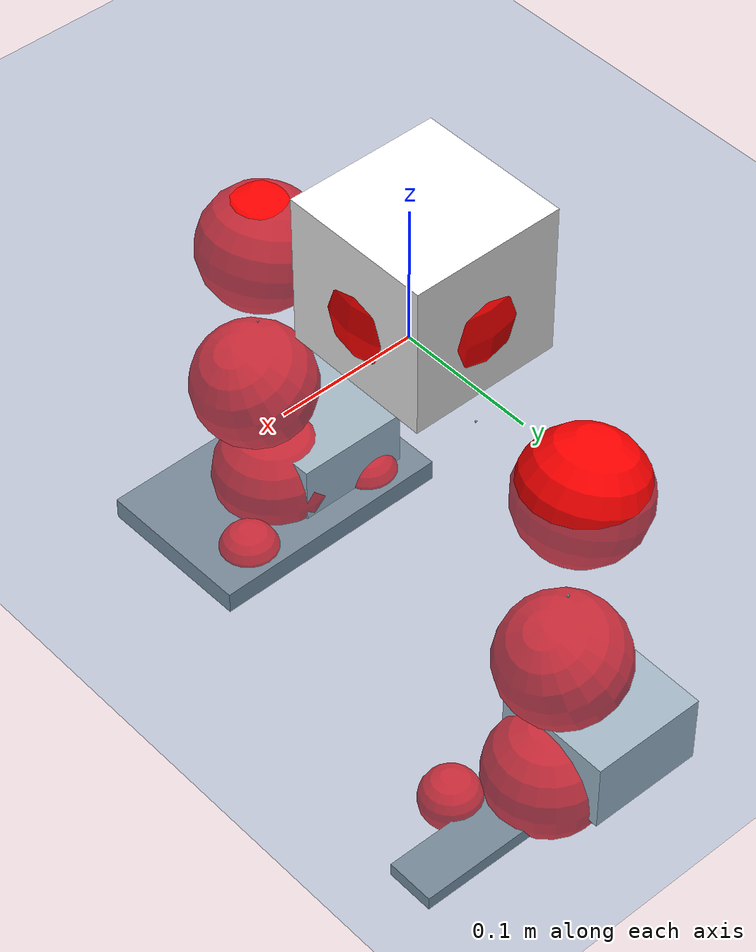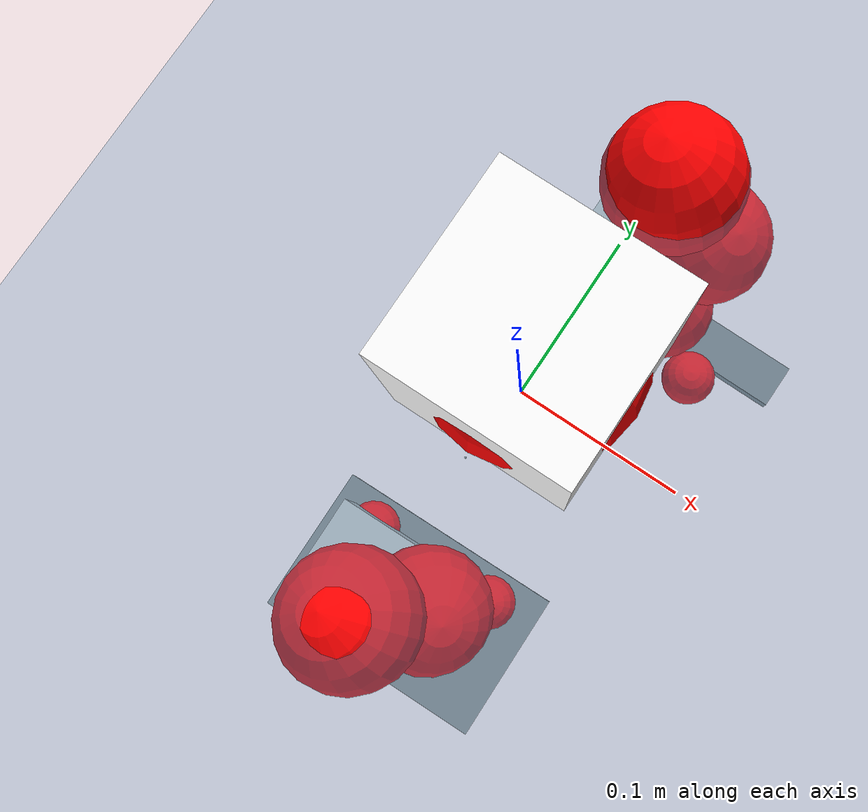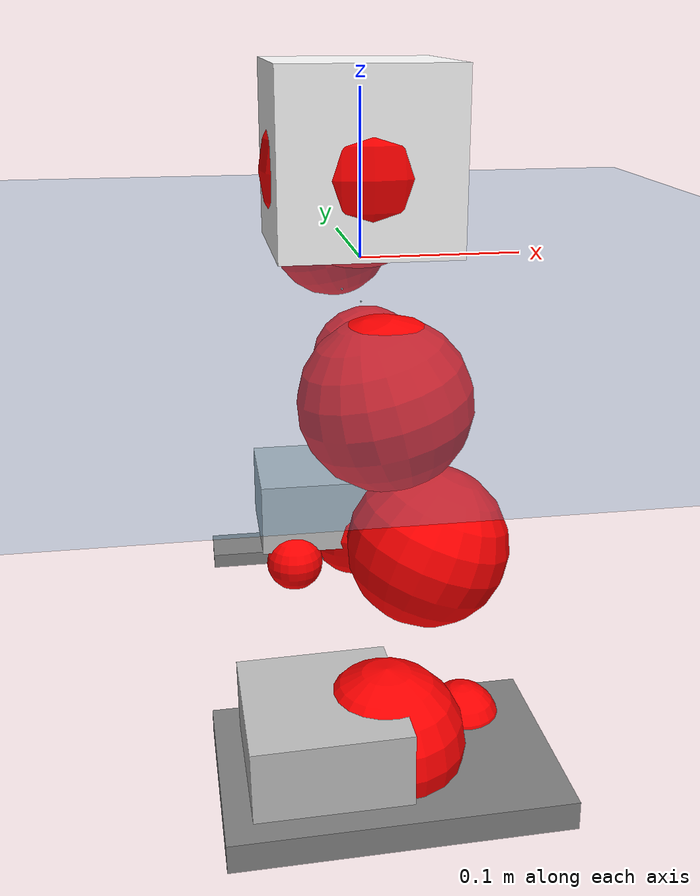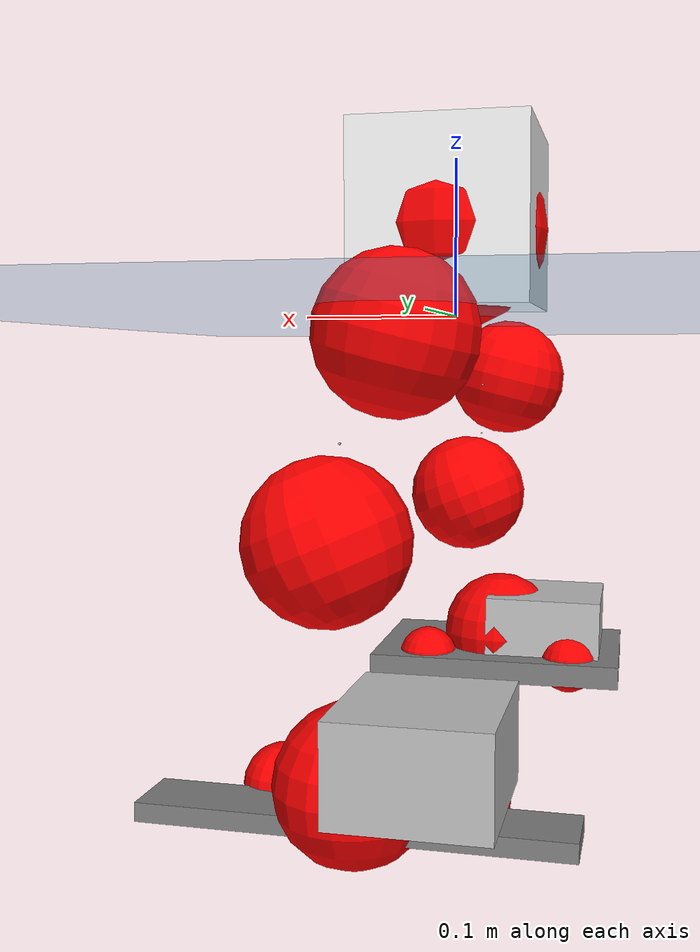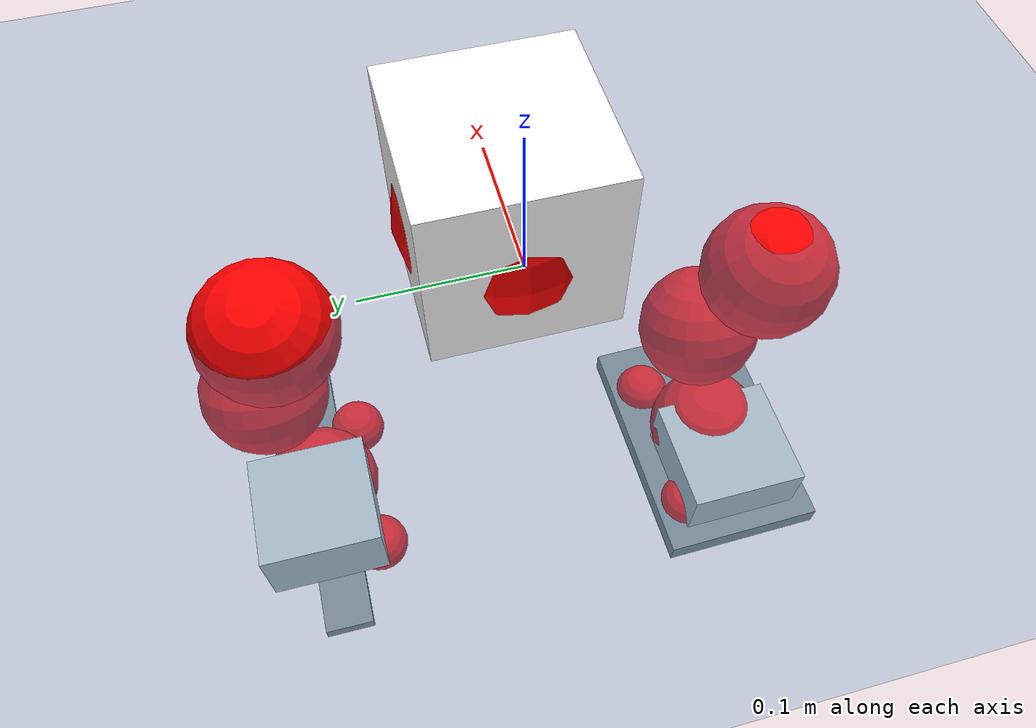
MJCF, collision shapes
<mujoco model="pi_12dof_release_v1">
  <compiler angle="radian" assetdir="assets" balanceinertia="true" inertiafromgeom="false"/>

  <option timestep="0.005" density="1.2" viscosity="2e-05"/>

  <size nkey="1"/>

  <visual>
    <quality shadowsize="8192"/>
    <map shadowclip="0.5"/>
  </visual>

  <default>
    <default class="/">
      <joint armature="0.01" damping="0.01" frictionloss="0.01"/>
      <geom contype="0" conaffinity="0" group="1" solref="-1000 -80"/>
      <site size="0.01 0.005 0.005" group="5"/>
      <general forcelimited="true" biastype="affine" gainprm="20" biasprm="0 -20 -0.5"/>
      <default class="foot">
        <geom size="0.0845 0.036 0.005" type="box" condim="6" group="4" priority="1" friction="0.9 0.2 0.2" solimp="0.015 1 0.005"/>
      </default>
      <default class="reward_collision_sphere">
        <geom group="5" rgba="1 0 0 1"/>
      </default>
    </default>
  </default>

  <asset>
    <texture type="skybox" colorspace="auto" name="//unnamed_texture_0" builtin="gradient" rgb1="0.95 0.95 0.95" rgb2="0.95 0.95 0.95" width="100" height="600"/>
    <texture type="2d" colorspace="auto" name="texplane" builtin="checker" rgb1="0.345 0.575 0.748" rgb2="0.345 0.575 0.748" markrgb="1 1 1" width="512" height="512"/>
    <material name="MatPlane" class="/" texture="texplane" texuniform="true" texrepeat="2 2" specular="0.9"/>
    <mesh name="baselink_1" class="/" file="baselink_1.STL"/>
    <mesh name="r_hip_pitch_link" class="/" file="r_hip_pitch_link.STL"/>
    <mesh name="r_hip_roll_link" class="/" file="r_hip_roll_link.STL"/>
    <mesh name="r_thigh_link" class="/" file="r_thigh_link.STL"/>
    <mesh name="r_calf_link" class="/" file="r_calf_link.STL"/>
    <mesh name="r_ankle_pitch_link" class="/" file="r_ankle_pitch_link.STL"/>
    <mesh name="r_ankle_roll_link" class="/" file="r_ankle_roll_link.STL"/>
    <mesh name="l_hip_pitch_link" class="/" file="l_hip_pitch_link.STL"/>
    <mesh name="l_hip_roll_link" class="/" file="l_hip_roll_link.STL"/>
    <mesh name="l_thigh_link" class="/" file="l_thigh_link.STL"/>
    <mesh name="l_calf_link" class="/" file="l_calf_link.STL"/>
    <mesh name="l_ankle_pitch_link" class="/" file="l_ankle_pitch_link.STL"/>
    <mesh name="l_ankle_roll_link" class="/" file="l_ankle_roll_link.STL"/>
  </asset>

  <worldbody>
    <geom name="floor" class="/" size="100 100 0.125" type="plane" group="0" material="MatPlane"/>
    <light name="toplight_shadow" class="/" pos="0 0 5" dir="0.0990148 0.0990148 -0.990148" type="directional" ambient="0.04 0.04 0.04" diffuse="0.55 0.55 0.55" specular="0.12 0.12 0.12"/>
    <light name="toplight_fill" class="/" pos="0 0 5" dir="0.0990148 0.0990148 -0.990148" type="directional" castshadow="false" ambient="0.04 0.04 0.04" diffuse="0.3 0.3 0.3" specular="0.08 0.08 0.08"/>
    <body name="trunk" pos="0.000439719 0.0129031 -0.00321821" quat="1 0.000157661 0.000182005 8.54925e-05">
      <inertial pos="-0.00478929 0.0135584 0.0339016" quat="0.753188 0.0248658 -0.010281 0.657254" mass="2.88135" diaginertia="0.00361885 0.147189 0.00126616"/>
      <joint name="//unnamed_joint_0" type="free"/>
      <geom name="//unnamed_geom_1" class="/" type="mesh" density="0" rgba="1 1 1 1" mesh="baselink_1"/>
      <geom name="//unnamed_geom_2" class="/" size="0.0548394 0.0548394 0.0548394" pos="0 0 0.0631543" type="box" rgba="1 1 1 1"/>
      <geom name="//unnamed_geom_3" class="reward_collision_sphere" size="0.0603233" pos="0 0 0.05526"/>
      <site name="imu" class="/" pos="-0.0628291 -0.0508904 0.0644345" size="0.0109679"/>
      <camera name="track" class="/" pos="0 -3.39919 0" quat="0.707107 0.707107 0 0" mode="trackcom"/>
      <camera name="ego_camera" class="/" pos="0.0601005 0 0.142097" quat="-0.5 -0.5 0.5 0.5"/>
      <body name="r_hip_pitch_link" pos="-0.0113933 -0.056723 -0.0408896" quat="0.992487 0.00417407 -0.122192 -0.00456716">
        <inertial pos="0.00507881 -0.0946517 -0.00956869" quat="-0.00239837 0.704485 -0.0337746 0.70891" mass="0.577988" diaginertia="3.50304e-05 0.00151555 2.43141e-05"/>
        <joint name="r_hip_pitch_joint" class="/" pos="0 0 0" axis="-0.0388571 -0.999244 -0.00152111" stiffness="0.0105192" range="-1.75196 1.44898" armature="0.0101069" damping="0.016876" frictionloss="0.0142216"/>
        <geom name="//unnamed_geom_4" class="/" type="mesh" density="0" rgba="0.75294 0.75294 0.75294 1" mesh="r_hip_pitch_link"/>
        <geom name="//unnamed_geom_5" class="/" size="0.000548394 0.000548394 0.000548394" type="box" rgba="0.75294 0.75294 0.75294 1"/>
        <body name="r_hip_roll_link" pos="-0.000475561 -0.113749 0.00558904" quat="0.999982 0.00319199 -0.00401969 0.00308286">
          <inertial pos="-0.0134094 -0.0101965 -0.0525079" quat="0.673884 -0.029878 -0.109053 0.730134" mass="0.510998" diaginertia="0.000102636 0.00384162 4.14429e-05"/>
          <joint name="r_hip_roll_joint" class="/" pos="0 0 0" axis="-0.998423 0.0346131 -0.0441904" range="-0.0891905 0.224966" armature="0.0177515" damping="0.108887" frictionloss="0.0124508"/>
          <geom name="//unnamed_geom_6" class="/" type="mesh" density="0" rgba="0.75294 0.75294 0.75294 1" mesh="r_hip_roll_link"/>
          <geom name="//unnamed_geom_7" class="/" size="0.000548394 0.000548394 0.000548394" type="box" rgba="0.75294 0.75294 0.75294 1"/>
          <geom name="//unnamed_geom_8" class="reward_collision_sphere" size="0.0438715"/>
          <body name="r_thigh_link" pos="0.0067676 0.0153938 -0.0468506" quat="0.999988 0.00191021 -0.00258283 0.00365147">
            <inertial pos="-0.0111988 0.00238181 -0.0208483" quat="0.738238 0.674539 -0.000586278 0.00120879" mass="0.154895" diaginertia="4.75218e-05 0.00106804 2.12235e-05"/>
            <joint name="r_thigh_joint" class="/" pos="0 0 0" axis="0.00316127 -0.0012246 -0.999994" stiffness="0.0520475" range="-0.0646455 0.56744" armature="0.0154858" damping="0" frictionloss="0.0104223"/>
            <geom name="//unnamed_geom_9" class="/" type="mesh" density="0" rgba="0.75294 0.75294 0.75294 1" mesh="r_thigh_link"/>
            <geom name="//unnamed_geom_10" class="/" size="0.000548394 0.000548394 0.000548394" type="box" rgba="0.75294 0.75294 0.75294 1"/>
            <body name="r_calf_link" pos="-0.00251354 0.00448055 -0.0470547" quat="0.947648 -2.00919e-06 0.319316 -3.29258e-06">
              <inertial pos="0.00737225 -0.00754804 -0.0607799" quat="0.999936 -0.00488235 0.00932245 -0.00404018" mass="1.21849" diaginertia="0.00121361 0.0581725 4.29207e-05"/>
              <joint name="r_calf_joint" class="/" pos="0 0 0" axis="-0.0342827 -0.998713 0.0373809" stiffness="0.0465589" range="-1.99883 0.455348" armature="0.0142663" damping="0.00925534" frictionloss="0.00584573"/>
              <geom name="//unnamed_geom_11" class="/" type="mesh" density="0" rgba="0.75294 0.75294 0.75294 1" mesh="r_calf_link"/>
              <geom name="//unnamed_geom_12" class="/" size="0.000548394 0.000548394 0.000548394" type="box" rgba="0.75294 0.75294 0.75294 1"/>
              <geom name="//unnamed_geom_13" class="reward_collision_sphere" size="0.0438715"/>
              <body name="r_ankle_pitch_link" pos="-0.0153981 -0.0169326 -0.120766" quat="0.979249 -0.00168259 -0.202648 0.0014477">
                <inertial pos="0.0130369 0.0228905 0.00258943" quat="0.0461793 0.690006 0.0168118 0.722133" mass="0.16346" diaginertia="8.10512e-05 0.00259812 3.34329e-05"/>
                <joint name="r_ankle_pitch_joint" class="/" pos="0 0 0" axis="0.047561 -0.996887 0.0628897" range="-1.4809 0.189005" armature="0.00974575" damping="0" frictionloss="0.0151663"/>
                <geom name="//unnamed_geom_14" class="/" type="mesh" density="0" rgba="0.75294 0.75294 0.75294 1" mesh="r_ankle_pitch_link"/>
                <geom name="//unnamed_geom_15" class="/" size="0.0427747 0.0438715 0.0274197" type="box" rgba="0.75294 0.75294 0.75294 1"/>
                <body name="r_ankle_roll_link" pos="0.0762508 0.00182224 0.0107434" quat="0.999975 -0.0054397 0.00457477 0.000506866">
                  <inertial pos="-0.0268392 0.000264873 -0.0231142" quat="0.524517 0.463832 0.455605 0.549696" mass="0.662913" diaginertia="0.000350885 0.0147366 7.99677e-05"/>
                  <joint name="r_ankle_roll_joint" class="/" pos="0 0 0" axis="-0.999993 0.00307304 -0.00198043" range="0.178972 0.132114" armature="0.011342" damping="0.0299273" frictionloss="0.0161907"/>
                  <geom name="//unnamed_geom_16" class="/" type="mesh" density="0" rgba="0.75294 0.75294 0.75294 1" mesh="r_ankle_roll_link"/>
                  <geom name="//unnamed_geom_17" class="/" type="mesh" rgba="0.75294 0.75294 0.75294 1" mesh="r_ankle_roll_link"/>
                  <geom name="right_foot" class="foot" size="0.0928011 0.0598838 0.00825459" pos="-0.0408683 0 -0.0347349"/>
                  <geom name="//unnamed_geom_19" class="reward_collision_sphere" size="0.0438715" pos="-0.040067 0 -0.0157886"/>
                  <geom name="//unnamed_geom_20" class="reward_collision_sphere" size="0.0219357" pos="0.0120201 0.0339919 -0.0315771"/>
                  <geom name="//unnamed_geom_21" class="reward_collision_sphere" size="0.0219357" pos="-0.0961608 0.0339919 -0.0315771"/>
                  <site name="right_foot" class="foot" pos="-0.0408683 0 -0.0347349" size="0.0109679"/>
                </body>
              </body>
            </body>
          </body>
        </body>
      </body>
      <body name="l_hip_pitch_link" pos="-0.00345756 0.0436126 -0.0292059" quat="0.991916 -0.00282074 -0.126859 -0.000756112">
        <inertial pos="3.25511e-05 0.106108 -0.0101024" quat="-0.0103766 0.712654 0.0152785 0.701272" mass="0.422372" diaginertia="3.79359e-05 0.00132915 2.78783e-05"/>
        <joint name="l_hip_pitch_joint" class="/" pos="0 0 0" axis="-0.00717513 0.999968 0.00367417" range="-1.23822 1.7872" armature="0.0129218" damping="0.0734053" frictionloss="0.00466549"/>
        <geom name="//unnamed_geom_22" class="/" type="mesh" density="0" rgba="0.75294 0.75294 0.75294 1" mesh="l_hip_pitch_link"/>
        <geom name="//unnamed_geom_23" class="/" size="0.000548394 0.000548394 0.000548394" type="box" rgba="0.75294 0.75294 0.75294 1"/>
        <body name="l_hip_roll_link" pos="0.0108427 0.098342 0.015788" quat="0.999996 0.0021471 -0.000549195 -0.00157391">
          <inertial pos="-0.00199788 0.00375225 -0.0320819" quat="0.714713 -0.113572 -0.0530416 0.688094" mass="0.36281" diaginertia="0.000107158 0.00318646 3.70358e-05"/>
          <joint name="l_hip_roll_joint" class="/" pos="0 0 0" axis="-0.997835 -0.0336162 0.0565289" range="-0.185119 0.117623" armature="0.00357057" damping="0" frictionloss="0.00672476"/>
          <geom name="//unnamed_geom_24" class="/" type="mesh" density="0" rgba="0.75294 0.75294 0.75294 1" mesh="l_hip_roll_link"/>
          <geom name="//unnamed_geom_25" class="/" size="0.000548394 0.000548394 0.000548394" type="box" rgba="0.75294 0.75294 0.75294 1"/>
          <geom name="//unnamed_geom_26" class="reward_collision_sphere" size="0.0438715"/>
          <body name="l_thigh_link" pos="0.010492 0.0172108 -0.0598003" quat="0.999996 0.00241413 0.000743709 0.00145726">
            <inertial pos="0.00319788 -0.00241765 -0.0334097" quat="0.679298 0.733782 -0.00529616 -0.00948365" mass="0.11166" diaginertia="2.93705e-05 0.00120011 1.54506e-05"/>
            <joint name="l_thigh_joint" class="/" pos="0 0 0" axis="-0.00166837 0.00677919 -0.999976" range="-0.686591 0.288055" armature="0.0166316" damping="0.0143068" frictionloss="0.0108957"/>
            <geom name="//unnamed_geom_27" class="/" type="mesh" density="0" rgba="0.75294 0.75294 0.75294 1" mesh="l_thigh_link"/>
            <geom name="//unnamed_geom_28" class="/" size="0.000548394 0.000548394 0.000548394" type="box" rgba="0.75294 0.75294 0.75294 1"/>
            <body name="l_calf_link" pos="-0.00693238 0.00391613 -0.0492733" quat="0.946286 0.00558933 0.323279 -0.00127582">
              <inertial pos="-0.00600629 -0.00747137 -0.043736" quat="0.999445 0.0174956 -0.0232308 0.0162337" mass="0.910003" diaginertia="0.000854591 0.0390871 3.76743e-05"/>
              <joint name="l_calf_joint" class="/" pos="0 0 0" axis="0.0410478 0.998411 0.038615" stiffness="0.0363981" range="-0.763118 1.81491" armature="0.00772053" damping="0" frictionloss="0.00690081"/>
              <geom name="//unnamed_geom_29" class="/" type="mesh" density="0" rgba="0.75294 0.75294 0.75294 1" mesh="l_calf_link"/>
              <geom name="//unnamed_geom_30" class="/" size="0.000548394 0.000548394 0.000548394" type="box" rgba="0.75294 0.75294 0.75294 1"/>
              <geom name="//unnamed_geom_31" class="reward_collision_sphere" size="0.0438715"/>
              <body name="l_ankle_pitch_link" pos="-0.00095959 -0.0119381 -0.118574" quat="0.97941 -0.00517136 -0.20177 -0.00433008">
                <inertial pos="0.00328276 0.0137558 -0.0104917" quat="0.00900278 0.696754 0.0227036 0.716895" mass="0.255238" diaginertia="0.00011059 0.00347731 4.1785e-05"/>
                <joint name="l_ankle_pitch_joint" class="/" pos="0 0 0" axis="-0.0103172 0.999946 0.00103475" stiffness="0.0378674" range="-0.243375 1.08295" armature="0.00900411" damping="0" frictionloss="0.0111703"/>
                <geom name="//unnamed_geom_32" class="/" type="mesh" density="0" rgba="0.75294 0.75294 0.75294 1" mesh="l_ankle_pitch_link"/>
                <geom name="//unnamed_geom_33" class="/" size="0.0427747 0.0438715 0.0274197" type="box" rgba="0.75294 0.75294 0.75294 1"/>
                <body name="l_ankle_roll_link" pos="0.0782545 -0.00575356 -0.00567561" quat="0.99999 0.00407166 -0.00175273 -0.000473414">
                  <inertial pos="-0.0365843 -0.000957739 -0.00488707" quat="0.561802 0.440213 0.399718 0.575167" mass="0.69748" diaginertia="0.000298664 0.0156189 8.00264e-05"/>
                  <joint name="l_ankle_roll_joint" class="/" pos="0 0 0" axis="-0.996463 -0.0720548 -0.0432367" stiffness="0.0416666" range="-0.486229 0.403626" armature="0.00313776" damping="0" frictionloss="0.0187086"/>
                  <geom name="//unnamed_geom_34" class="/" type="mesh" density="0" rgba="0.75294 0.75294 0.75294 1" mesh="l_ankle_roll_link"/>
                  <geom name="//unnamed_geom_35" class="/" type="mesh" rgba="0.75294 0.75294 0.75294 1" mesh="l_ankle_roll_link"/>
                  <geom name="left_foot" class="foot" size="0.117693 0.0179476 0.00527471" pos="-0.0408683 0 -0.0347349"/>
                  <geom name="//unnamed_geom_37" class="reward_collision_sphere" size="0.0438715" pos="-0.040067 0 -0.0157886"/>
                  <geom name="//unnamed_geom_38" class="reward_collision_sphere" size="0.0219357" pos="0.0120201 -0.0339919 -0.0315771"/>
                  <geom name="//unnamed_geom_39" class="reward_collision_sphere" size="0.0219357" pos="-0.0961608 -0.0339919 -0.0315771"/>
                  <site name="left_foot" class="foot" pos="-0.0408683 0 -0.0347349" size="0.0109679"/>
                </body>
              </body>
            </body>
          </body>
        </body>
      </body>
    </body>
  </worldbody>

  <contact>
    <pair class="/" geom1="floor" geom2="right_foot" name="//unnamed_contact_1"/>
    <pair class="/" geom1="floor" geom2="left_foot" name="//unnamed_contact_0"/>
  </contact>

  <actuator>
    <general name="r_hip_pitch_joint" class="/" joint="r_hip_pitch_joint" forcerange="-28.4331 28.4331" gainprm="27.6886" biasprm="0 -27.6886 -0.645346"/>
    <general name="r_hip_roll_joint" class="/" joint="r_hip_roll_joint" forcerange="-23.1066 23.1066" gainprm="27.6886" biasprm="0 -27.6886 -0.645346"/>
    <general name="r_thigh_joint" class="/" joint="r_thigh_joint" forcerange="-13.0788 13.0788" gainprm="27.6886" biasprm="0 -27.6886 -0.645346"/>
    <general name="r_calf_joint" class="/" joint="r_calf_joint" forcerange="-35.6207 35.6207" gainprm="27.6886" biasprm="0 -27.6886 -0.645346"/>
    <general name="r_ankle_pitch_joint" class="/" joint="r_ankle_pitch_joint" forcerange="-9.54147 9.54147" gainprm="27.6886" biasprm="0 -27.6886 -0.645346"/>
    <general name="r_ankle_roll_joint" class="/" joint="r_ankle_roll_joint" forcerange="-9.46355 9.46355" gainprm="27.6886" biasprm="0 -27.6886 -0.645346"/>
    <general name="l_hip_pitch_joint" class="/" joint="l_hip_pitch_joint" forcerange="-8.07749 8.07749" gainprm="27.6886" biasprm="0 -27.6886 -0.645346"/>
    <general name="l_hip_roll_joint" class="/" joint="l_hip_roll_joint" forcerange="-32.9995 32.9995" gainprm="27.6886" biasprm="0 -27.6886 -0.645346"/>
    <general name="l_thigh_joint" class="/" joint="l_thigh_joint" forcerange="-28.9008 28.9008" gainprm="27.6886" biasprm="0 -27.6886 -0.645346"/>
    <general name="l_calf_joint" class="/" joint="l_calf_joint" forcerange="-9.52588 9.52588" gainprm="27.6886" biasprm="0 -27.6886 -0.645346"/>
    <general name="l_ankle_pitch_joint" class="/" joint="l_ankle_pitch_joint" forcerange="-9.49527 9.49527" gainprm="27.6886" biasprm="0 -27.6886 -0.645346"/>
    <general name="l_ankle_roll_joint" class="/" joint="l_ankle_roll_joint" forcerange="-13.2361 13.2361" gainprm="27.6886" biasprm="0 -27.6886 -0.645346"/>
  </actuator>

  <sensor>
    <gyro site="imu" name="imu_angular_velocity"/>
    <velocimeter site="imu" name="imu_linear_velocity"/>
    <framelinvel objtype="site" objname="left_foot" name="left_foot_global_linear_velocity"/>
    <framelinvel objtype="site" objname="right_foot" name="right_foot_global_linear_velocity"/>
  </sensor>

  <keyframe>
    <key name="home" qpos="0 0 0.291 1 0 0 0 0.4 0 0 -0.8 0.4 0 -0.4 0 0 0.8 -0.4 0"/>
  </keyframe>
</mujoco>
